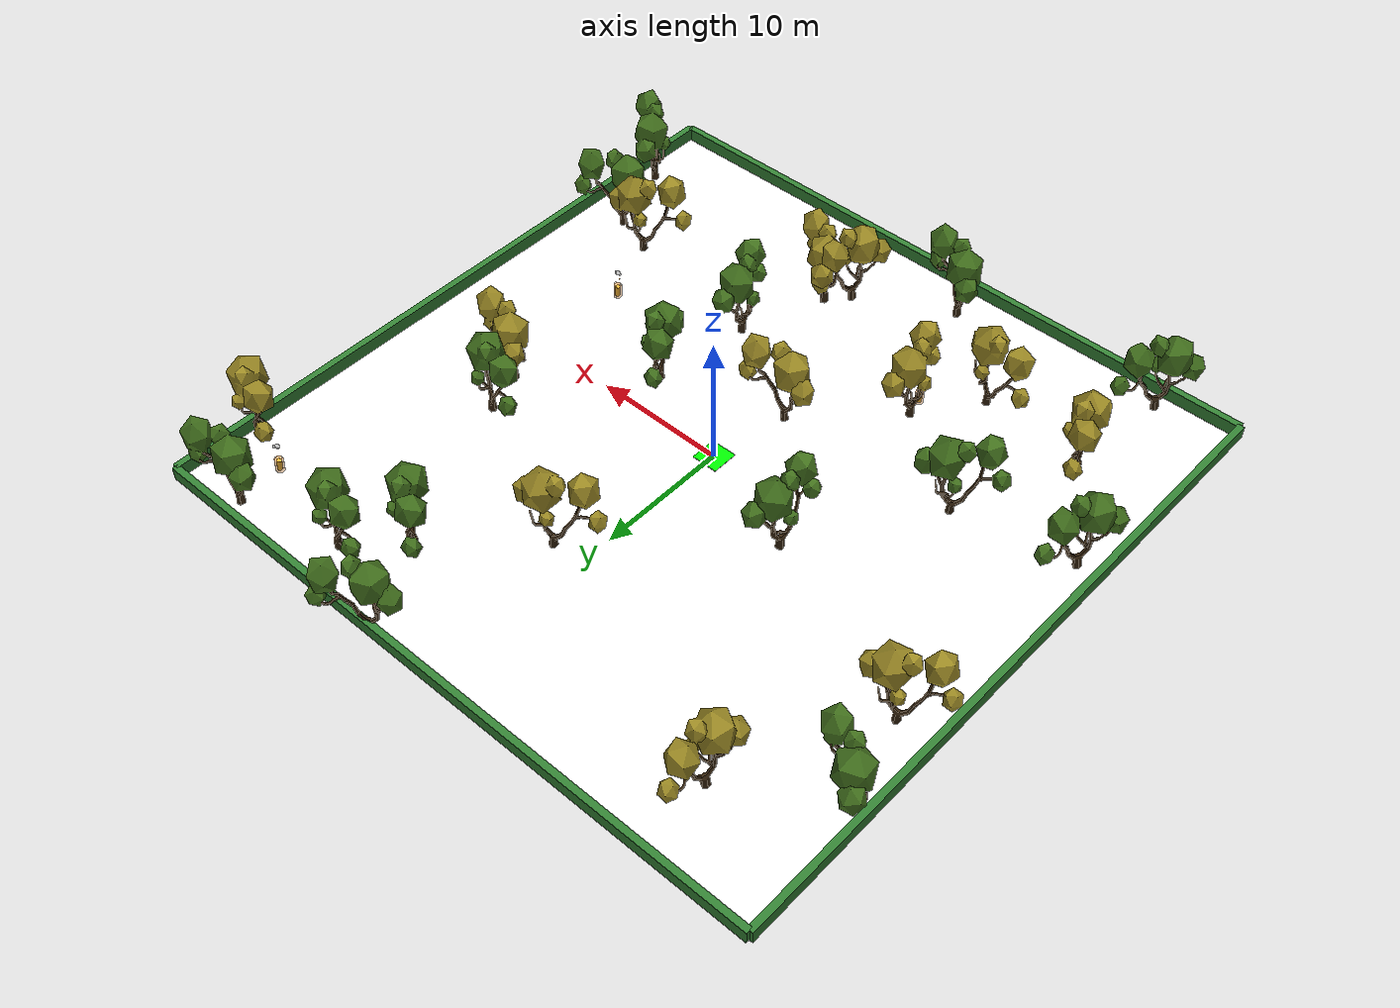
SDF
<sdf version="1.8">
 <world name="bushland_world_spaced">
  <plugin filename="ignition-gazebo-thermal-system" name="ignition::gazebo::systems::Thermal">
   <temperature>293.15</temperature>
  </plugin>
  <plugin name="ignition::gazebo::systems::Physics" filename="ignition-gazebo-physics-system"/>
  <plugin name="ignition::gazebo::systems::UserCommands" filename="ignition-gazebo-user-commands-system"/>
  <plugin name="ignition::gazebo::systems::SceneBroadcaster" filename="ignition-gazebo-scene-broadcaster-system"/>
  <plugin name="ignition::gazebo::systems::Contact" filename="ignition-gazebo-contact-system"/>
  <plugin name="ignition::gazebo::systems::Sensors" filename="libignition-gazebo-sensors-system.so"/>
  <light name="sun" type="directional">
   <pose>0 0 10 0 -0 0</pose>
   <diffuse>0.8 0.8 0.8 1</diffuse>
   <specular>0.2 0.2 0.2 1</specular>
   <attenuation>
    <range>1000</range>
    <constant>0.9</constant>
    <linear>0.01</linear>
    <quadratic>0.001</quadratic>
   </attenuation>
   <direction>-0.5 0.1 -0.9</direction>
  </light>
  <gravity>0 0 -9.81</gravity>
  <magnetic_field>6e-06 2.3e-05 -4.2e-05</magnetic_field>
  <atmosphere type="adiabatic"/>
  <physics name="default_physics" type="ignored">
   <max_step_size>0.01</max_step_size>
   <real_time_factor>1</real_time_factor>
   <real_time_update_rate>100</real_time_update_rate>
  </physics>
  <scene><ambient>1.0 1.0 1.0</ambient><background>0.8 0.8 0.8</background><shadows>1</shadows></scene>
  <spherical_coordinates>
   <latitude_deg>0.0</latitude_deg>
   <longitude_deg>0.0</longitude_deg>
   <elevation>10.0</elevation>
   <heading_deg>0</heading_deg>
   <surface_model>EARTH_WGS84</surface_model>
  </spherical_coordinates>
  <include><uri>model://big_forest_plane</uri><name>big_forest_plane</name></include>
  <model name="charging_station">
   <static>true</static>
   <pose>0 0 0.01 0 0 0</pose>
   <link name="pad">
    <collision name="collision"><geometry><box><size>2.0 2.0 0.02</size></box></geometry></collision>
    <visual name="visual">
     <geometry><box><size>2.0 2.0 0.02</size></box></geometry>
     <material>
      <ambient>0.0 1.0 0.0 1.0</ambient>
      <diffuse>0.0 1.0 0.0 1.0</diffuse>
      <specular>0.1 0.1 0.1 1.0</specular>
      <emissive>0.0 0.3 0.0 1.0</emissive>
     </material>
    </visual>
   </link>
  </model>
  <include>
   <uri>model://low_poly_tree_dark</uri>
   <name>oak_1</name>
   <pose>-18.5 -15.2 0.18 0 0.05 1.23</pose>
   <static>true</static>
  </include>
  <include>
   <uri>model://low_poly_tree_dark</uri>
   <name>oak_2</name>
   <pose>-22.1 8.7 0.18 0 0.05 2.91</pose>
   <static>true</static>
  </include>
  <include>
   <uri>model://low_poly_tree_dark</uri>
   <name>oak_3</name>
   <pose>3.2 -18.5 0.18 0 0.05 0.67</pose>
   <static>true</static>
  </include>
  <include>
   <uri>model://low_poly_tree_dark</uri>
   <name>oak_4</name>
   <pose>18.3 -12.4 0.18 0 0.05 3.01</pose>
   <static>true</static>
  </include>
  <include>
   <uri>model://low_poly_tree_dark</uri>
   <name>oak_5</name>
   <pose>24.2 18.9 0.18 0 0.05 2.00</pose>
   <static>true</static>
  </include>
  <include>
   <uri>model://low_poly_tree_dark</uri>
   <name>oak_6</name>
   <pose>-16.8 19.4 0.18 0 0.05 0.85</pose>
   <static>true</static>
  </include>
  <include>
   <uri>model://low_poly_tree</uri>
   <name>oak_7</name>
   <pose>-23.3 -8.2 0.18 0 0.05 0.55</pose>
   <static>true</static>
  </include>
  <include>
   <uri>model://low_poly_tree</uri>
   <name>oak_8</name>
   <pose>-8.4 3.1 0.18 0 0.05 3.99</pose>
   <static>true</static>
  </include>
  <include>
   <uri>model://low_poly_tree</uri>
   <name>oak_9</name>
   <pose>5.7 24.8 0.18 0 0.05 6.18</pose>
   <static>true</static>
  </include>
  <include>
   <uri>model://low_poly_tree</uri>
   <name>oak_10</name>
   <pose>-3.6 -22.1 0.18 0 0.05 5.15</pose>
   <static>true</static>
  </include>
  <include>
   <uri>model://low_poly_tree</uri>
   <name>oak_11</name>
   <pose>14.2 6.8 0.18 0 0.05 2.06</pose>
   <static>true</static>
  </include>
  <include>
   <uri>model://low_poly_tree</uri>
   <name>oak_12</name>
   <pose>-19.3 -23.5 0.18 0 0.05 0.30</pose>
   <static>true</static>
  </include>
  <include>
   <uri>model://low_poly_tree</uri>
   <name>oak_13</name>
   <pose>23.5 -19.2 0.18 0 0.05 4.78</pose>
   <static>true</static>
  </include>
  <include>
   <uri>model://low_poly_tree</uri>
   <name>oak_14</name>
   <pose>20.1 23.6 0.18 0 0.05 5.70</pose>
   <static>true</static>
  </include>
  <include>
   <uri>model://low_poly_tree</uri>
   <name>oak_15</name>
   <pose>-23.9 15.2 0.18 0 0.05 4.99</pose>
   <static>true</static>
  </include>
  <include>
   <uri>model://low_poly_tree_dark</uri>
   <name>oak_16</name>
   <pose>-10.5 -16.2 0.18 0 0.05 2.15</pose>
   <static>true</static>
  </include>
  <include>
   <uri>model://low_poly_tree</uri>
   <name>oak_17</name>
   <pose>6.8 -10.5 0.18 0 0.05 4.32</pose>
   <static>true</static>
  </include>
  <include>
   <uri>model://low_poly_tree_dark</uri>
   <name>oak_18</name>
   <pose>-1.2 -5.8 0.18 0 0.05 5.67</pose>
   <static>true</static>
  </include>
  <include>
   <uri>model://low_poly_tree</uri>
   <name>oak_19</name>
   <pose>9.2 18.4 0.18 0 0.05 1.76</pose>
   <static>true</static>
  </include>
  <include>
   <uri>model://low_poly_tree_dark</uri>
   <name>oak_20</name>
   <pose>-7.3 -11.8 0.18 0 0.05 4.21</pose>
   <static>true</static>
  </include>
  <include>
   <uri>model://low_poly_tree</uri>
   <name>oak_21</name>
   <pose>-14.6 -6.5 0.18 0 0.05 3.12</pose>
   <static>true</static>
  </include>
  <include>
   <uri>model://low_poly_tree_dark</uri>
   <name>oak_22</name>
   <pose>2.4 12.6 0.18 0 0.05 2.91</pose>
   <static>true</static>
  </include>
  <include>
   <uri>model://low_poly_tree</uri>
   <name>oak_23</name>
   <pose>7.9 -3.2 0 0 0.05 1.45</pose>
   <static>true</static>
  </include>
  <include>
   <uri>model://low_poly_tree_dark</uri>
   <name>oak_24</name>
   <pose>15.3 3.7 0.18 0 0.05 5.23</pose>
   <static>true</static>
  </include>
  <include>
   <uri>model://low_poly_tree</uri>
   <name>oak_25</name>
   <pose>21.5 -13.6 0.18 0 0.05 6.01</pose>
   <static>true</static>
  </include>
  <include>
   <uri>model://low_poly_tree_dark</uri>
   <name>oak_26</name>
   <pose>4.5 -16.9 0.18 0 0.05 4.89</pose>
   <static>true</static>
  </include>
  <include>
   <uri>model://low_poly_tree</uri>
   <name>oak_27</name>
   <pose>12.4 21.8 0.18 0 0.05 2.08</pose>
   <static>true</static>
  </include>
  <include>
   <uri>model://fire</uri>
   <name>test_fire</name>
   <pose>20.5 20.1 0 0 0.05 3.95</pose>
   <static>true</static>
  </include>
  <include>
   <uri>model://fire</uri>
   <name>test_fire2</name>
   <pose>-7.0 -13.2 0 0 0.05 4.95</pose>
   <static>true</static>
  </include>
  <include>
   <uri>model://fire</uri>
   <name>test_fire3</name>
   <pose>21.6 22.3 0 0 0.05 0.12</pose>
   <static>true</static>
  </include>
  <include>
   <uri>model://fire</uri>
   <name>test_fire4</name>
   <pose>16.0 -7.3 0 0 0.05 3.37</pose>
   <static>true</static>
  </include>
  <model name="wall_north">
   <static>true</static>
   <pose>0 25 0.5 0 0 0</pose>
   <link name="link">
    <collision name="collision"><geometry><box><size>50 0.5 1.0</size></box></geometry></collision>
    <visual name="visual">
     <geometry><box><size>50 0.5 1.0</size></box></geometry>
     <material>
      <ambient>0.2 0.4 0.2 1</ambient>
      <diffuse>0.2 0.5 0.2 1</diffuse>
      <specular>0.1 0.1 0.1 1</specular>
     </material>
    </visual>
   </link>
  </model>
  <model name="wall_south">
   <static>true</static>
   <pose>0 -25 0.5 0 0 0</pose>
   <link name="link">
    <collision name="collision"><geometry><box><size>50 0.5 1.0</size></box></geometry></collision>
    <visual name="visual">
     <geometry><box><size>50 0.5 1.0</size></box></geometry>
     <material>
      <ambient>0.2 0.4 0.2 1</ambient>
      <diffuse>0.2 0.5 0.2 1</diffuse>
      <specular>0.1 0.1 0.1 1</specular>
     </material>
    </visual>
   </link>
  </model>
  <model name="wall_east">
   <static>true</static>
   <pose>25 0 0.5 0 0 0</pose>
   <link name="link">
    <collision name="collision"><geometry><box><size>0.5 50 1.0</size></box></geometry></collision>
    <visual name="visual">
     <geometry><box><size>0.5 50 1.0</size></box></geometry>
     <material>
      <ambient>0.2 0.4 0.2 1</ambient>
      <diffuse>0.2 0.5 0.2 1</diffuse>
      <specular>0.1 0.1 0.1 1</specular>
     </material>
    </visual>
   </link>
  </model>
  <model name="wall_west">
   <static>true</static>
   <pose>-25 0 0.5 0 0 0</pose>
   <link name="link">
    <collision name="collision"><geometry><box><size>0.5 50 1.0</size></box></geometry></collision>
    <visual name="visual">
     <geometry><box><size>0.5 50 1.0</size></box></geometry>
     <material>
      <ambient>0.2 0.4 0.2 1</ambient>
      <diffuse>0.2 0.5 0.2 1</diffuse>
      <specular>0.1 0.1 0.1 1</specular>
     </material>
    </visual>
   </link>
  </model>
 </world>
</sdf>

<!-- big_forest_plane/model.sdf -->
<sdf version="1.7">
<model name="grass_plane">
    <static>true</static>
    <link name="link">
        <collision name="collision">
            <geometry>
            <box>
                <normal>0 0 1</normal>
                <size>50 50 0.01</size>
            </box>
            </geometry>
        </collision>
        <visual name="visual">
            <cast_shadows>false</cast_shadows>
            <geometry>
            <plane>
                <normal>0 0 1</normal>
                <size>50 50</size>
            </plane>
            </geometry>
            <material>
                <ambient>1.0 1.0 1.0 1</ambient>
                <diffuse>1.0 1.0 1.0 1</diffuse>
                <pbr>
                    <metal>
                    <albedo_map>
                        model://forest_plane/materials/textures/forest_overhead.png
                    </albedo_map>
                    </metal>
                </pbr>
            </material>
        </visual>
    </link>
</model>
</sdf>

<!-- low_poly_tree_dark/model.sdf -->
<sdf version="1.6">
  <model name="low_poly_tree_dark">
    <static>true</static>
    <link name="link">
      <pose>0 0 0 1.5708 0 0</pose>
      <collision name="collision">
        <geometry>
          <mesh>
            <uri>model://low_poly_tree_dark/meshes/low_poly_tree_dark.dae</uri>
            <scale>200 200 200</scale>
          </mesh>
        </geometry>
      </collision>

      <visual name="visual">
        <geometry>
          <mesh>
            <uri>model://low_poly_tree_dark/meshes/low_poly_tree_dark.dae</uri>
            <scale>200 200 200</scale>
          </mesh>
        </geometry>
      </visual>
    </link>
  </model>
</sdf>

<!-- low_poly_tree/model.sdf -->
<sdf version="1.6">
  <model name="low_poly_tree">
    <static>true</static>
    <link name="link">
      <pose>0 0 0 1.5708 0 0</pose>
      <collision name="collision">
        <geometry>
          <mesh>
            <uri>model://low_poly_tree/meshes/low_poly_tree.dae</uri>
            <scale>200 200 200</scale>
          </mesh>
        </geometry>
      </collision>

      <visual name="visual">
        <geometry>
          <mesh>
            <uri>model://low_poly_tree/meshes/low_poly_tree.dae</uri>
            <scale>200 200 200</scale>
          </mesh>
        </geometry>
      </visual>
    </link>
  </model>
</sdf>

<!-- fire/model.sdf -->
<sdf version="1.6">
  <model name="fire">
    <static>true</static>
    <link name="fire_link">
      <pose>0 0 0.5 0 0 0</pose>

      <!-- Outer fire visual (transparent) -->
      <visual name="fire_visual">
        <geometry>
          <cylinder>
            <radius>0.3</radius>
            <length>1.0</length>
          </cylinder>
        </geometry>
        <material>
          <ambient>1 0.3 0 0.4</ambient>
          <diffuse>1 0.5 0 0.4</diffuse>
          <emissive>1 0.2 0 0.3</emissive>
        </material>
      </visual>

      <!-- Inner flame effect (smaller cylinder inside) -->
      <visual name="flame_effect">
        <pose>0 0 0 0 0 0</pose>
        <geometry>
          <cylinder>
            <radius>0.18</radius>
            <length>0.8</length>
          </cylinder>
        </geometry>
        <material>
          <ambient>1 0.8 0.2 0.9</ambient>
          <diffuse>1 0.9 0.4 0.9</diffuse>
          <emissive>1 0.7 0.3 0.8</emissive>
        </material>
      </visual>

      <!-- Particle effects - Sparks and embers -->
      <visual name="spark_1">
        <pose>0.15 0.1 0.85 0 0 0</pose>
        <geometry>
          <sphere>
            <radius>0.02</radius>
          </sphere>
        </geometry>
        <material>
          <ambient>1 0.8 0 1.0</ambient>
          <diffuse>1 0.9 0.2 1.0</diffuse>
          <emissive>1 0.9 0.3 1.0</emissive>
        </material>
      </visual>

      <visual name="spark_2">
        <pose>-0.12 0.18 0.8 0 0 0</pose>
        <geometry>
          <sphere>
            <radius>0.015</radius>
          </sphere>
        </geometry>
        <material>
          <ambient>1 0.7 0.1 1.0</ambient>
          <diffuse>1 0.8 0.2 1.0</diffuse>
          <emissive>1 0.8 0.4 1.0</emissive>
        </material>
      </visual>

      <visual name="spark_3">
        <pose>0.08 -0.15 0.9 0 0 0</pose>
        <geometry>
          <sphere>
            <radius>0.018</radius>
          </sphere>
        </geometry>
        <material>
          <ambient>1 0.9 0.2 1.0</ambient>
          <diffuse>1 1.0 0.4 1.0</diffuse>
          <emissive>1 1.0 0.5 1.0</emissive>
        </material>
      </visual>

      <visual name="spark_4">
        <pose>-0.2 -0.05 0.95 0 0 0</pose>
        <geometry>
          <sphere>
            <radius>0.012</radius>
          </sphere>
        </geometry>
        <material>
          <ambient>1 0.6 0 1.0</ambient>
          <diffuse>1 0.8 0.1 1.0</diffuse>
          <emissive>1 0.9 0.2 1.0</emissive>
        </material>
      </visual>

      <visual name="spark_5">
        <pose>0.22 0.08 0.83 0 0 0</pose>
        <geometry>
          <sphere>
            <radius>0.025</radius>
          </sphere>
        </geometry>
        <material>
          <ambient>1 0.5 0 1.0</ambient>
          <diffuse>1 0.7 0.1 1.0</diffuse>
          <emissive>1 0.8 0.2 1.0</emissive>
        </material>
      </visual>

      <!-- Rising ember particles -->
      <visual name="ember_1">
        <pose>0.05 0.12 1.05 0 0 0</pose>
        <geometry>
          <sphere>
            <radius>0.01</radius>
          </sphere>
        </geometry>
        <material>
          <ambient>1 0.4 0 0.9</ambient>
          <diffuse>1 0.6 0.1 0.9</diffuse>
          <emissive>1 0.7 0.2 0.8</emissive>
        </material>
      </visual>

      <visual name="ember_2">
        <pose>-0.08 0.06 1.15 0 0 0</pose>
        <geometry>
          <sphere>
            <radius>0.008</radius>
          </sphere>
        </geometry>
        <material>
          <ambient>1 0.3 0 0.8</ambient>
          <diffuse>1 0.5 0.1 0.8</diffuse>
          <emissive>1 0.6 0.2 0.7</emissive>
        </material>
      </visual>

      <visual name="ember_3">
        <pose>0.11 -0.09 1.25 0 0 0</pose>
        <geometry>
          <sphere>
            <radius>0.006</radius>
          </sphere>
        </geometry>
        <material>
          <ambient>1 0.2 0 0.7</ambient>
          <diffuse>1 0.4 0 0.7</diffuse>
          <emissive>1 0.5 0.1 0.6</emissive>
        </material>
      </visual>

      <!-- Smoke particles (darker, larger) -->
      <visual name="smoke_1">
        <pose>0.1 0.15 1.45 0 0 0</pose>
        <geometry>
          <sphere>
            <radius>0.08</radius>
          </sphere>
        </geometry>
        <material>
          <ambient>0.3 0.3 0.3 0.4</ambient>
          <diffuse>0.4 0.4 0.4 0.5</diffuse>
          <emissive>0.1 0.1 0.1 0.3</emissive>
        </material>
      </visual>

      <visual name="smoke_2">
        <pose>-0.15 0.08 1.65 0 0 0</pose>
        <geometry>
          <sphere>
            <radius>0.12</radius>
          </sphere>
        </geometry>
        <material>
          <ambient>0.2 0.2 0.2 0.3</ambient>
          <diffuse>0.3 0.3 0.3 0.4</diffuse>
          <emissive>0.05 0.05 0.05 0.2</emissive>
        </material>
      </visual>

      <visual name="smoke_3">
        <pose>0.08 -0.12 1.85 0 0 0</pose>
        <geometry>
          <sphere>
            <radius>0.15</radius>
          </sphere>
        </geometry>
        <material>
          <ambient>0.15 0.15 0.15 0.25</ambient>
          <diffuse>0.25 0.25 0.25 0.3</diffuse>
          <emissive>0.02 0.02 0.02 0.1</emissive>
        </material>
      </visual>

      <!-- Heat distortion effects (very transparent) -->
      <visual name="heat_shimmer_1">
        <pose>0.2 0.1 0.55 0 0 0</pose>
        <geometry>
          <sphere>
            <radius>0.05</radius>
          </sphere>
        </geometry>
        <material>
          <ambient>1 0.8 0.6 0.1</ambient>
          <diffuse>1 0.9 0.7 0.15</diffuse>
          <emissive>1 0.9 0.8 0.1</emissive>
        </material>
      </visual>

      <visual name="heat_shimmer_2">
        <pose>-0.18 -0.08 0.75 0 0 0</pose>
        <geometry>
          <sphere>
            <radius>0.06</radius>
          </sphere>
        </geometry>
        <material>
          <ambient>1 0.7 0.5 0.08</ambient>
          <diffuse>1 0.8 0.6 0.12</diffuse>
          <emissive>1 0.8 0.7 0.08</emissive>
        </material>
      </visual>

      <!-- Flying sparks (smaller, higher up) -->
      <visual name="flying_spark_1">
        <pose>0.3 0.2 1.35 0 0 0</pose>
        <geometry>
          <sphere>
            <radius>0.005</radius>
          </sphere>
        </geometry>
        <material>
          <ambient>1 1 0.5 1.0</ambient>
          <diffuse>1 1 0.7 1.0</diffuse>
          <emissive>1 1 0.8 1.0</emissive>
        </material>
      </visual>

      <visual name="flying_spark_2">
        <pose>-0.25 0.18 1.55 0 0 0</pose>
        <geometry>
          <sphere>
            <radius>0.004</radius>
          </sphere>
        </geometry>
        <material>
          <ambient>1 0.9 0.3 1.0</ambient>
          <diffuse>1 1 0.5 1.0</diffuse>
          <emissive>1 1 0.6 1.0</emissive>
        </material>
      </visual>

      <visual name="flying_spark_3">
        <pose>0.28 -0.22 1.75 0 0 0</pose>
        <geometry>
          <sphere>
            <radius>0.003</radius>
          </sphere>
        </geometry>
        <material>
          <ambient>1 0.8 0.2 1.0</ambient>
          <diffuse>1 0.9 0.4 1.0</diffuse>
          <emissive>1 1 0.5 1.0</emissive>
        </material>
      </visual>

      <!-- Collision component -->
      <collision name="fire_collision">
        <geometry>
          <cylinder>
            <radius>0.3</radius>
            <length>1.0</length>
          </cylinder>
        </geometry>
      </collision>
      <!-- Thermal properties on the fire link so the camera can see it -->
      <plugin filename="libignition-gazebo-thermal-system.so" name="ignition::gazebo::systems::Thermal">
        <temperature>
          <uniform>
            <temperature>673.15</temperature>  <!-- 400°C in Kelvin -->
          </uniform>
        </temperature>
      </plugin>
    </link>

  </model>
</sdf>
